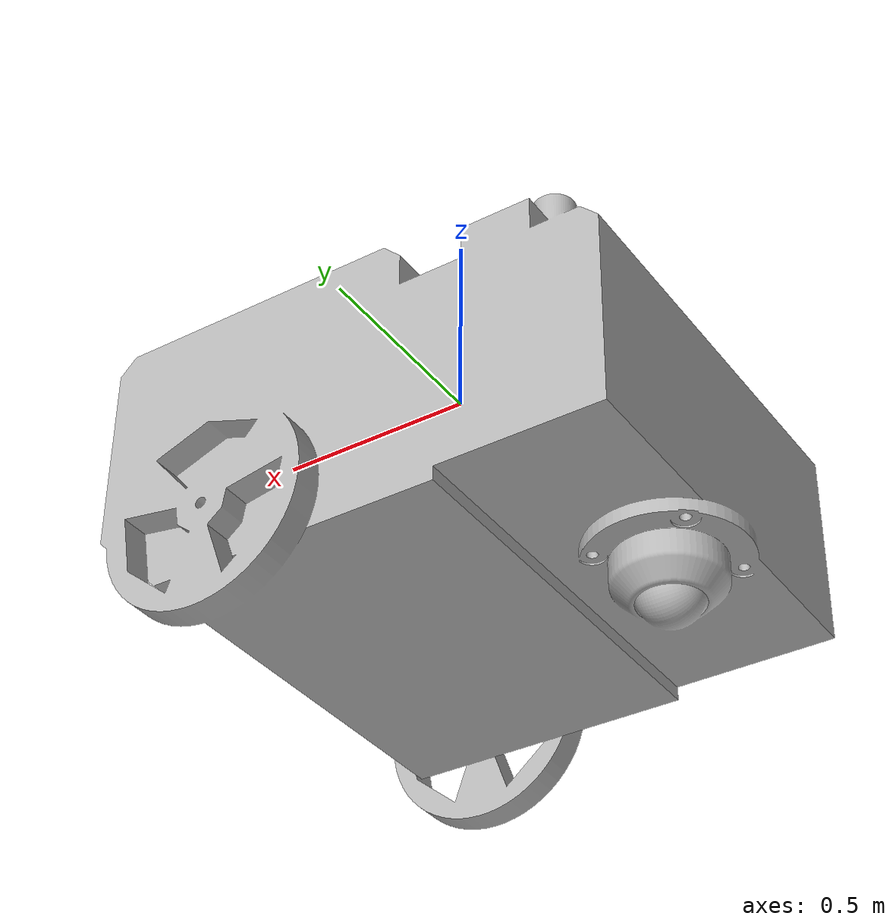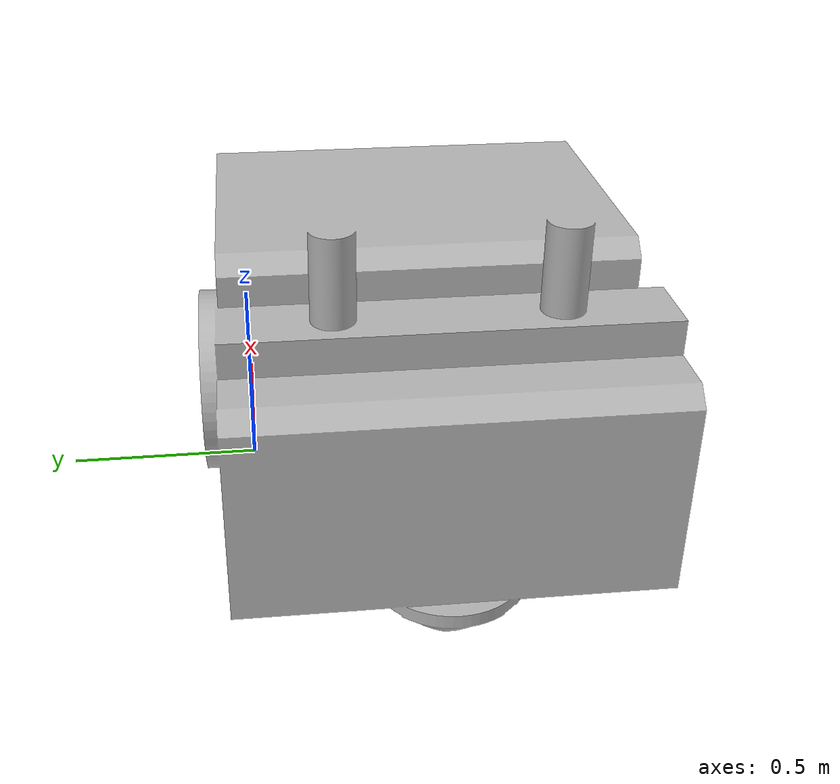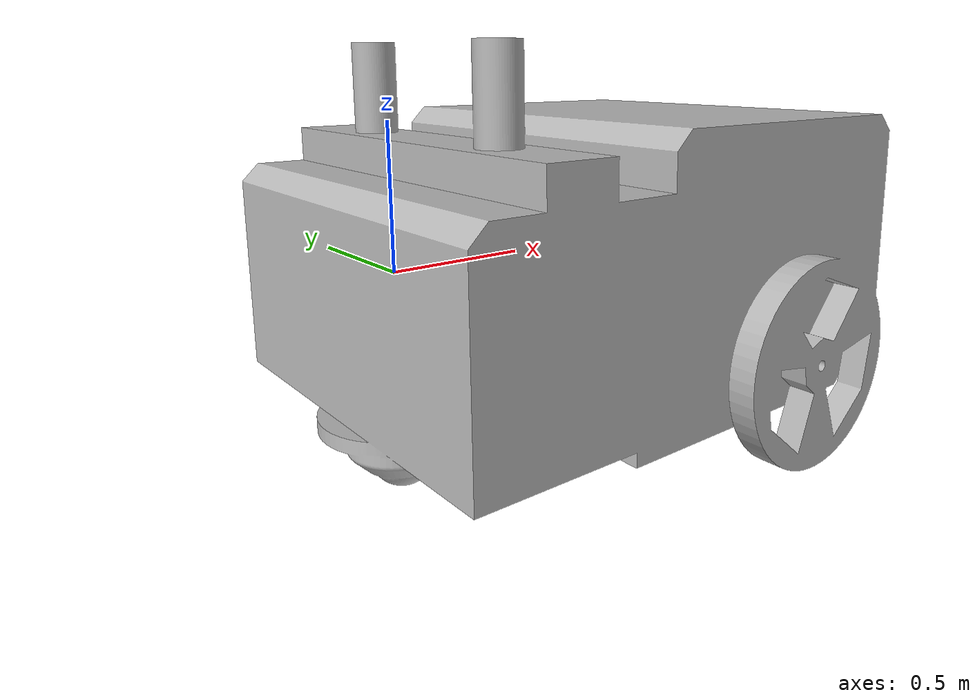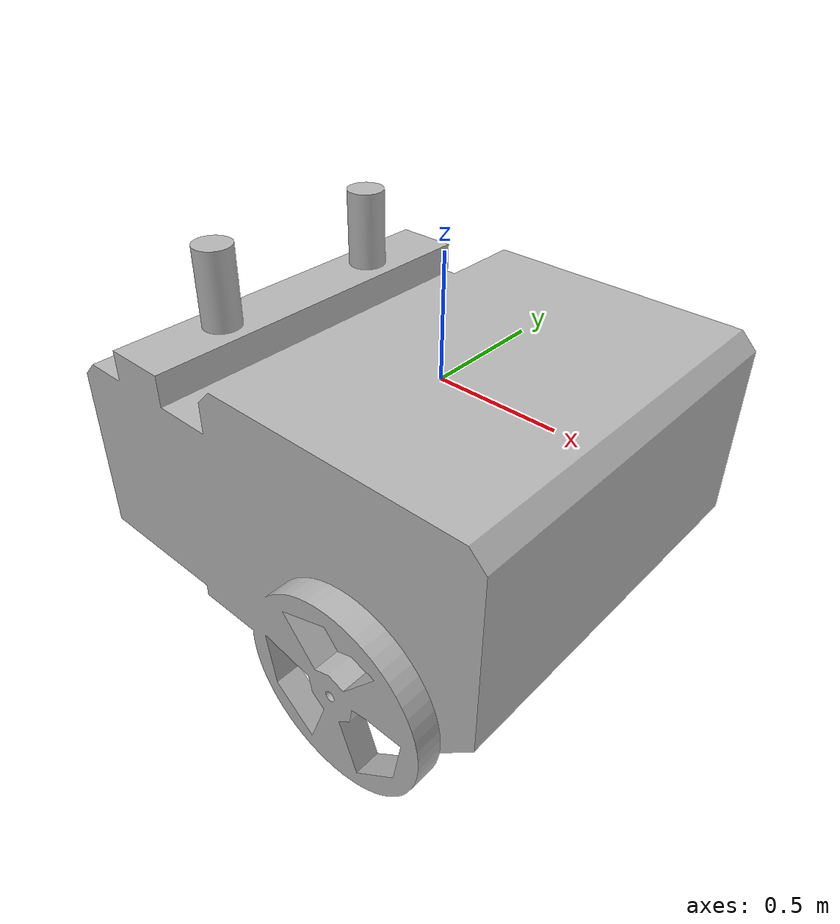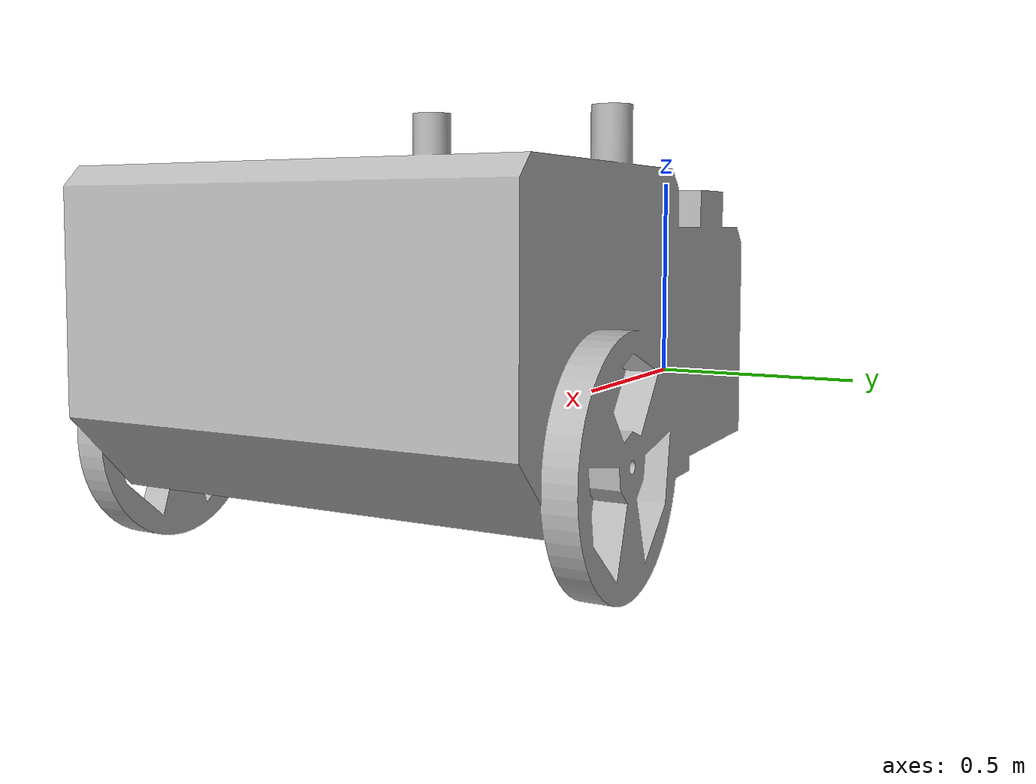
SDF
<?xml version='1.0' ?>
<sdf version='1.9'>
  <model name="jetbot">
    <plugin filename="libignition-gazebo-navsat-system.so"
            name="ignition::gazebo::systems::NavSat">
    </plugin>
    <static>false</static>
    <link name="link">
      <sensor type="navsat" name="gps">
        <navsat>
          <position_sensing>
          </position_sensing>
        </navsat>
        <always_on>true</always_on>
        <update_rate>30</update_rate>
        <visualize>true</visualize>
        <topic>/jetbot/gps</topic>
      </sensor>
      <sensor type="camera" name="camera">
        <camera>
          <horizontal_fov>1.047</horizontal_fov>
          <image>
            <width>320</width>
            <height>240</height>
          </image>
          <clip>
            <near>0.1</near>
            <far>100</far>
          </clip>
        </camera>
        <always_on>true</always_on>
        <update_rate>30</update_rate>
        <visualize>true</visualize>
        <topic>/jetbot/camera</topic>
        <pose>0 0.0 0.9 0 0 3.154</pose>
      </sensor>
      <collision name="collision">
        <geometry>
          <mesh>
            <scale>10 10 10</scale>
            <uri>model://gazebo_jetbot/meshes/jetbot_v1.obj</uri>
          </mesh>
        </geometry>
      </collision>
      <visual name="visual">
        <geometry>
          <mesh>
            <scale>10 10 10</scale>
            <uri>model://gazebo_jetbot/meshes/jetbot_v1.obj</uri>
          </mesh>
        </geometry>
      </visual>
      <inertial>
        <mass>10</mass>
        <pose>0 -0.5 -0.2 0 0 0</pose>
      </inertial>
    </link>
  </model>
</sdf>
